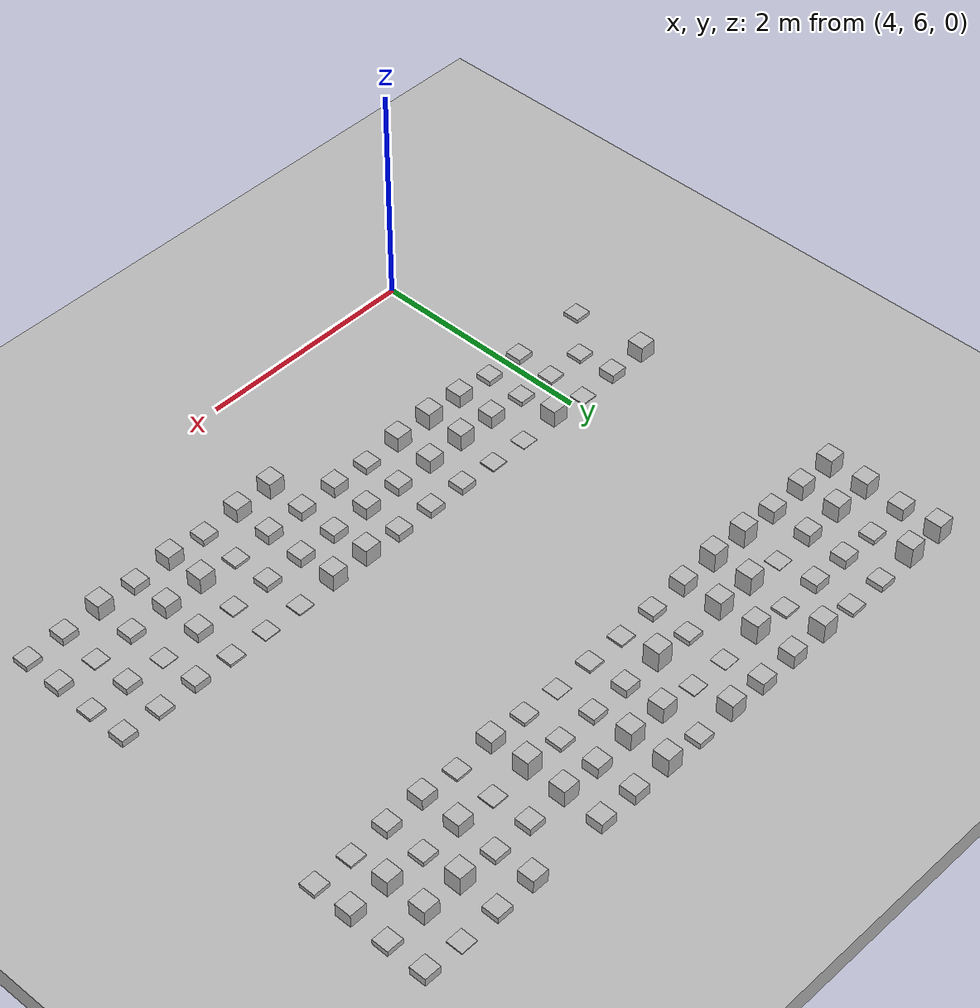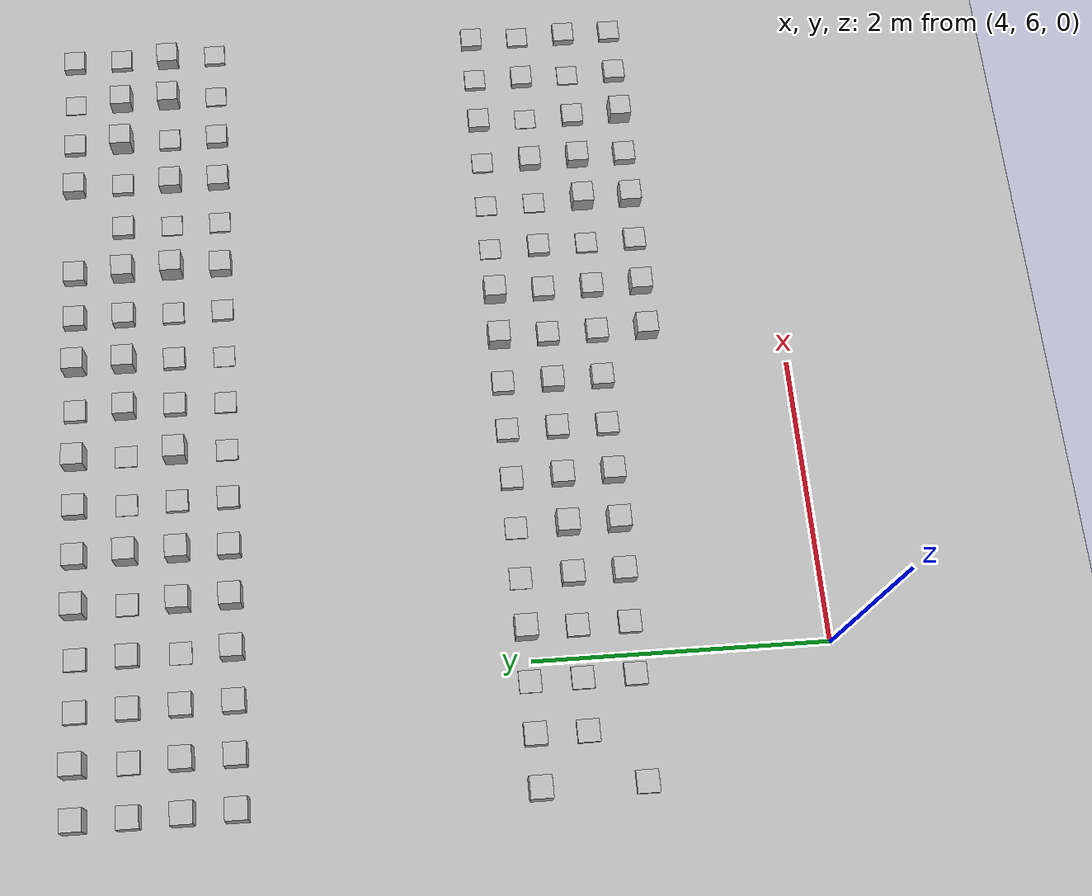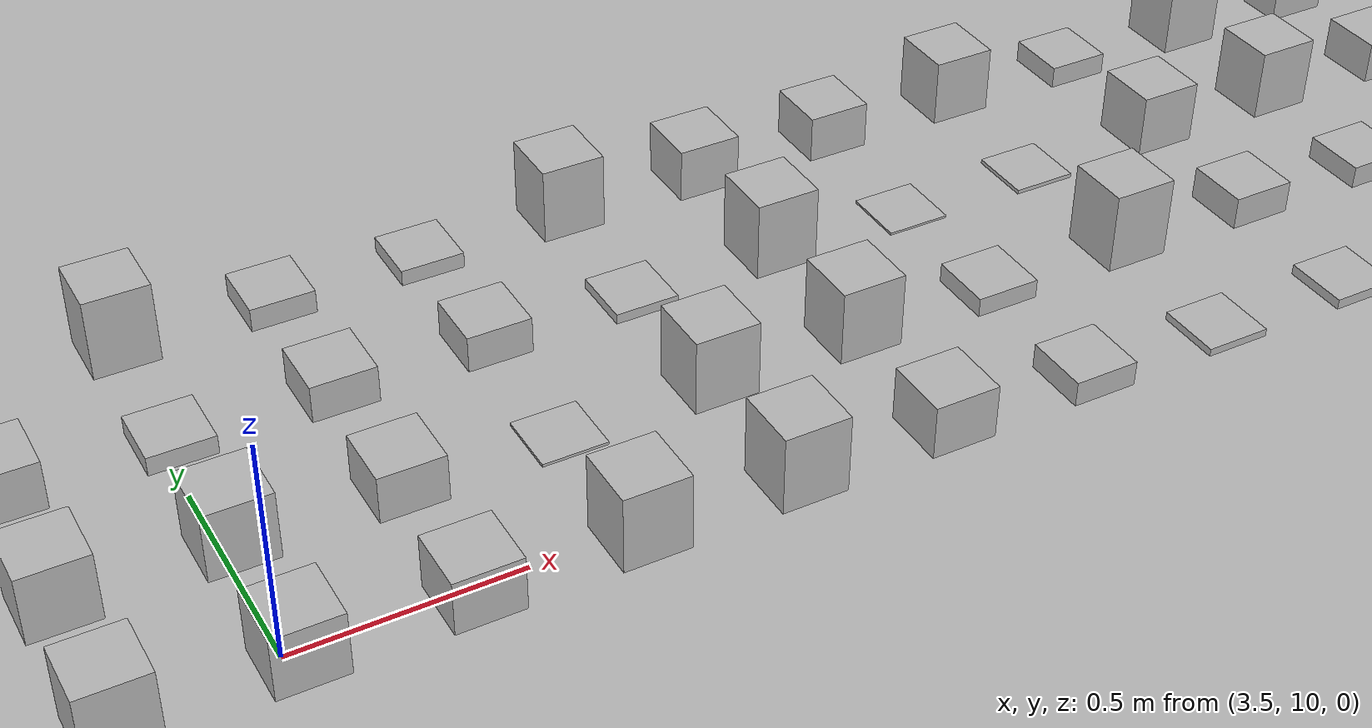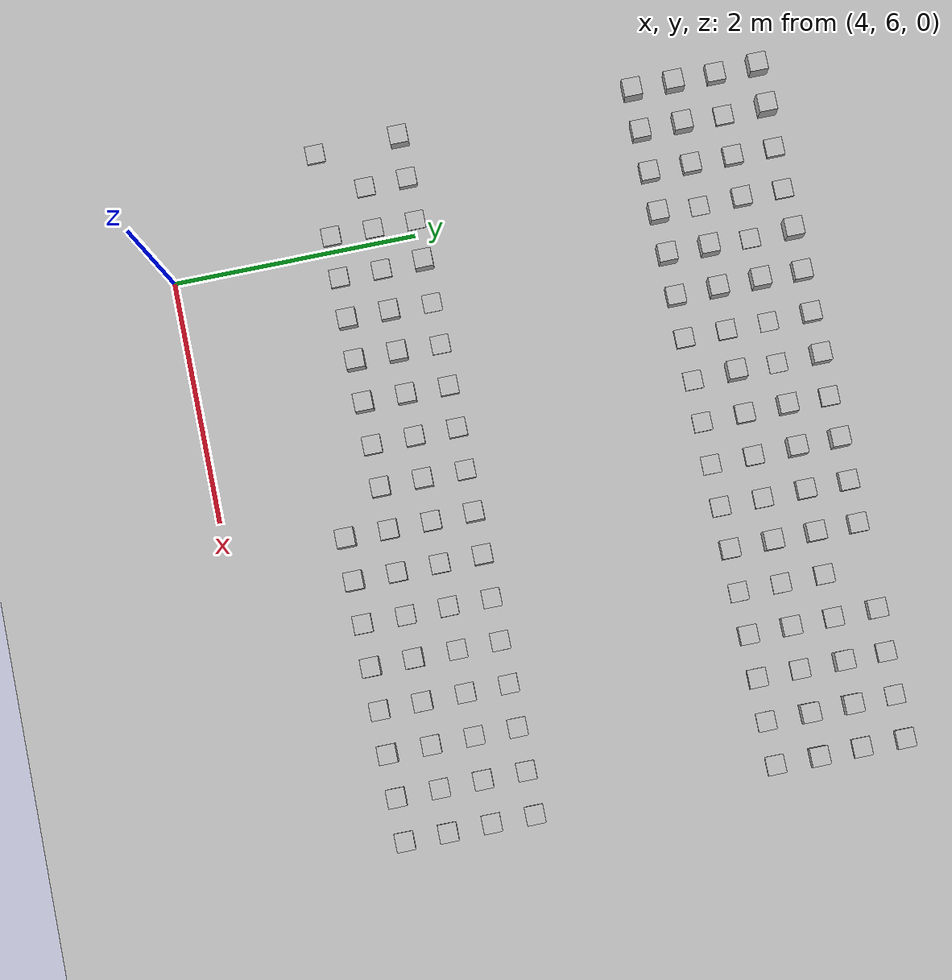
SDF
<sdf version="1.6">
 <world name="ugv_rough">
  <model name="ground">
   <static>true</static>
   <link name="l">
    <collision name="c"><geometry><box><size>60 60 0.2</size></box></geometry></collision>
    <visual name="v"><geometry><box><size>60 60 0.2</size></box></geometry></visual>
    <pose>0 0 -0.1 0 0 0</pose>
   </link>
  </model>
  <model name="r6_1">
   <static>true</static>
   <pose>3.175 7.325 0.0183 0 0 0</pose>
   <link name="l">
    <collision name="c"><geometry><box><size>0.15 0.15 0.036582575373329186</size></box></geometry></collision>
    <visual name="v"><geometry><box><size>0.15 0.15 0.036582575373329186</size></box></geometry></visual>
   </link>
  </model>
  <model name="r6_3">
   <static>true</static>
   <pose>3.175 8.025 0.0745 0 0 0</pose>
   <link name="l">
    <collision name="c"><geometry><box><size>0.15 0.15 0.1489323241444018</size></box></geometry></collision>
    <visual name="v"><geometry><box><size>0.15 0.15 0.1489323241444018</size></box></geometry></visual>
   </link>
  </model>
  <model name="r6_6">
   <static>true</static>
   <pose>3.525 7.675 0.0168 0 0 0</pose>
   <link name="l">
    <collision name="c"><geometry><box><size>0.15 0.15 0.033554731487051605</size></box></geometry></collision>
    <visual name="v"><geometry><box><size>0.15 0.15 0.033554731487051605</size></box></geometry></visual>
   </link>
  </model>
  <model name="r6_7">
   <static>true</static>
   <pose>3.525 8.025 0.0414 0 0 0</pose>
   <link name="l">
    <collision name="c"><geometry><box><size>0.15 0.15 0.08287363635761626</size></box></geometry></collision>
    <visual name="v"><geometry><box><size>0.15 0.15 0.08287363635761626</size></box></geometry></visual>
   </link>
  </model>
  <model name="r6_9">
   <static>true</static>
   <pose>3.875 7.325 0.0247 0 0 0</pose>
   <link name="l">
    <collision name="c"><geometry><box><size>0.15 0.15 0.04943548635803554</size></box></geometry></collision>
    <visual name="v"><geometry><box><size>0.15 0.15 0.04943548635803554</size></box></geometry></visual>
   </link>
  </model>
  <model name="r6_10">
   <static>true</static>
   <pose>3.875 7.675 0.0121 0 0 0</pose>
   <link name="l">
    <collision name="c"><geometry><box><size>0.15 0.15 0.024180995924502062</size></box></geometry></collision>
    <visual name="v"><geometry><box><size>0.15 0.15 0.024180995924502062</size></box></geometry></visual>
   </link>
  </model>
  <model name="r6_11">
   <static>true</static>
   <pose>3.875 8.025 0.0056 0 0 0</pose>
   <link name="l">
    <collision name="c"><geometry><box><size>0.15 0.15 0.011273235566419989</size></box></geometry></collision>
    <visual name="v"><geometry><box><size>0.15 0.15 0.011273235566419989</size></box></geometry></visual>
   </link>
  </model>
  <model name="r6_13">
   <static>true</static>
   <pose>4.225 7.325 0.0246 0 0 0</pose>
   <link name="l">
    <collision name="c"><geometry><box><size>0.15 0.15 0.04919970274255292</size></box></geometry></collision>
    <visual name="v"><geometry><box><size>0.15 0.15 0.04919970274255292</size></box></geometry></visual>
   </link>
  </model>
  <model name="r6_14">
   <static>true</static>
   <pose>4.225 7.675 0.0218 0 0 0</pose>
   <link name="l">
    <collision name="c"><geometry><box><size>0.15 0.15 0.04365756159960608</size></box></geometry></collision>
    <visual name="v"><geometry><box><size>0.15 0.15 0.04365756159960608</size></box></geometry></visual>
   </link>
  </model>
  <model name="r6_15">
   <static>true</static>
   <pose>4.225 8.025 0.0787 0 0 0</pose>
   <link name="l">
    <collision name="c"><geometry><box><size>0.15 0.15 0.15741543805438185</size></box></geometry></collision>
    <visual name="v"><geometry><box><size>0.15 0.15 0.15741543805438185</size></box></geometry></visual>
   </link>
  </model>
  <model name="r6_17">
   <static>true</static>
   <pose>4.575 7.325 0.0615 0 0 0</pose>
   <link name="l">
    <collision name="c"><geometry><box><size>0.15 0.15 0.12305251808357544</size></box></geometry></collision>
    <visual name="v"><geometry><box><size>0.15 0.15 0.12305251808357544</size></box></geometry></visual>
   </link>
  </model>
  <model name="r6_18">
   <static>true</static>
   <pose>4.575 7.675 0.0588 0 0 0</pose>
   <link name="l">
    <collision name="c"><geometry><box><size>0.15 0.15 0.11756442428719359</size></box></geometry></collision>
    <visual name="v"><geometry><box><size>0.15 0.15 0.11756442428719359</size></box></geometry></visual>
   </link>
  </model>
  <model name="r6_19">
   <static>true</static>
   <pose>4.575 8.025 0.0032 0 0 0</pose>
   <link name="l">
    <collision name="c"><geometry><box><size>0.15 0.15 0.006417604996857111</size></box></geometry></collision>
    <visual name="v"><geometry><box><size>0.15 0.15 0.006417604996857111</size></box></geometry></visual>
   </link>
  </model>
  <model name="r6_21">
   <static>true</static>
   <pose>4.925 7.325 0.0791 0 0 0</pose>
   <link name="l">
    <collision name="c"><geometry><box><size>0.15 0.15 0.15822520963663564</size></box></geometry></collision>
    <visual name="v"><geometry><box><size>0.15 0.15 0.15822520963663564</size></box></geometry></visual>
   </link>
  </model>
  <model name="r6_22">
   <static>true</static>
   <pose>4.925 7.675 0.0789 0 0 0</pose>
   <link name="l">
    <collision name="c"><geometry><box><size>0.15 0.15 0.15788848622402132</size></box></geometry></collision>
    <visual name="v"><geometry><box><size>0.15 0.15 0.15788848622402132</size></box></geometry></visual>
   </link>
  </model>
  <model name="r6_23">
   <static>true</static>
   <pose>4.925 8.025 0.0073 0 0 0</pose>
   <link name="l">
    <collision name="c"><geometry><box><size>0.15 0.15 0.014650061242006452</size></box></geometry></collision>
    <visual name="v"><geometry><box><size>0.15 0.15 0.014650061242006452</size></box></geometry></visual>
   </link>
  </model>
  <model name="r6_25">
   <static>true</static>
   <pose>5.275 7.325 0.0722 0 0 0</pose>
   <link name="l">
    <collision name="c"><geometry><box><size>0.15 0.15 0.14442862392424308</size></box></geometry></collision>
    <visual name="v"><geometry><box><size>0.15 0.15 0.14442862392424308</size></box></geometry></visual>
   </link>
  </model>
  <model name="r6_26">
   <static>true</static>
   <pose>5.275 7.675 0.0639 0 0 0</pose>
   <link name="l">
    <collision name="c"><geometry><box><size>0.15 0.15 0.12776652032146907</size></box></geometry></collision>
    <visual name="v"><geometry><box><size>0.15 0.15 0.12776652032146907</size></box></geometry></visual>
   </link>
  </model>
  <model name="r6_27">
   <static>true</static>
   <pose>5.275 8.025 0.0302 0 0 0</pose>
   <link name="l">
    <collision name="c"><geometry><box><size>0.15 0.15 0.06042051015993732</size></box></geometry></collision>
    <visual name="v"><geometry><box><size>0.15 0.15 0.06042051015993732</size></box></geometry></visual>
   </link>
  </model>
  <model name="r6_29">
   <static>true</static>
   <pose>5.625 7.325 0.0323 0 0 0</pose>
   <link name="l">
    <collision name="c"><geometry><box><size>0.15 0.15 0.0645521498995681</size></box></geometry></collision>
    <visual name="v"><geometry><box><size>0.15 0.15 0.0645521498995681</size></box></geometry></visual>
   </link>
  </model>
  <model name="r6_30">
   <static>true</static>
   <pose>5.625 7.675 0.0420 0 0 0</pose>
   <link name="l">
    <collision name="c"><geometry><box><size>0.15 0.15 0.08398417565390405</size></box></geometry></collision>
    <visual name="v"><geometry><box><size>0.15 0.15 0.08398417565390405</size></box></geometry></visual>
   </link>
  </model>
  <model name="r6_31">
   <static>true</static>
   <pose>5.625 8.025 0.0329 0 0 0</pose>
   <link name="l">
    <collision name="c"><geometry><box><size>0.15 0.15 0.06571212635336092</size></box></geometry></collision>
    <visual name="v"><geometry><box><size>0.15 0.15 0.06571212635336092</size></box></geometry></visual>
   </link>
  </model>
  <model name="r6_33">
   <static>true</static>
   <pose>5.975 7.325 0.0516 0 0 0</pose>
   <link name="l">
    <collision name="c"><geometry><box><size>0.15 0.15 0.10317851207896736</size></box></geometry></collision>
    <visual name="v"><geometry><box><size>0.15 0.15 0.10317851207896736</size></box></geometry></visual>
   </link>
  </model>
  <model name="r6_34">
   <static>true</static>
   <pose>5.975 7.675 0.0575 0 0 0</pose>
   <link name="l">
    <collision name="c"><geometry><box><size>0.15 0.15 0.1149927123690234</size></box></geometry></collision>
    <visual name="v"><geometry><box><size>0.15 0.15 0.1149927123690234</size></box></geometry></visual>
   </link>
  </model>
  <model name="r6_35">
   <static>true</static>
   <pose>5.975 8.025 0.0369 0 0 0</pose>
   <link name="l">
    <collision name="c"><geometry><box><size>0.15 0.15 0.07370844836818682</size></box></geometry></collision>
    <visual name="v"><geometry><box><size>0.15 0.15 0.07370844836818682</size></box></geometry></visual>
   </link>
  </model>
  <model name="r6_36">
   <static>true</static>
   <pose>6.325 6.975 0.0758 0 0 0</pose>
   <link name="l">
    <collision name="c"><geometry><box><size>0.15 0.15 0.15155891925750767</size></box></geometry></collision>
    <visual name="v"><geometry><box><size>0.15 0.15 0.15155891925750767</size></box></geometry></visual>
   </link>
  </model>
  <model name="r6_37">
   <static>true</static>
   <pose>6.325 7.325 0.0438 0 0 0</pose>
   <link name="l">
    <collision name="c"><geometry><box><size>0.15 0.15 0.08769562673116052</size></box></geometry></collision>
    <visual name="v"><geometry><box><size>0.15 0.15 0.08769562673116052</size></box></geometry></visual>
   </link>
  </model>
  <model name="r6_38">
   <static>true</static>
   <pose>6.325 7.675 0.0417 0 0 0</pose>
   <link name="l">
    <collision name="c"><geometry><box><size>0.15 0.15 0.0833989994845685</size></box></geometry></collision>
    <visual name="v"><geometry><box><size>0.15 0.15 0.0833989994845685</size></box></geometry></visual>
   </link>
  </model>
  <model name="r6_39">
   <static>true</static>
   <pose>6.325 8.025 0.0798 0 0 0</pose>
   <link name="l">
    <collision name="c"><geometry><box><size>0.15 0.15 0.15959633242867705</size></box></geometry></collision>
    <visual name="v"><geometry><box><size>0.15 0.15 0.15959633242867705</size></box></geometry></visual>
   </link>
  </model>
  <model name="r6_40">
   <static>true</static>
   <pose>6.675 6.975 0.0668 0 0 0</pose>
   <link name="l">
    <collision name="c"><geometry><box><size>0.15 0.15 0.1335557844531876</size></box></geometry></collision>
    <visual name="v"><geometry><box><size>0.15 0.15 0.1335557844531876</size></box></geometry></visual>
   </link>
  </model>
  <model name="r6_41">
   <static>true</static>
   <pose>6.675 7.325 0.0474 0 0 0</pose>
   <link name="l">
    <collision name="c"><geometry><box><size>0.15 0.15 0.09472536333204193</size></box></geometry></collision>
    <visual name="v"><geometry><box><size>0.15 0.15 0.09472536333204193</size></box></geometry></visual>
   </link>
  </model>
  <model name="r6_42">
   <static>true</static>
   <pose>6.675 7.675 0.0422 0 0 0</pose>
   <link name="l">
    <collision name="c"><geometry><box><size>0.15 0.15 0.08449920761829442</size></box></geometry></collision>
    <visual name="v"><geometry><box><size>0.15 0.15 0.08449920761829442</size></box></geometry></visual>
   </link>
  </model>
  <model name="r6_43">
   <static>true</static>
   <pose>6.675 8.025 0.0796 0 0 0</pose>
   <link name="l">
    <collision name="c"><geometry><box><size>0.15 0.15 0.15915432668937443</size></box></geometry></collision>
    <visual name="v"><geometry><box><size>0.15 0.15 0.15915432668937443</size></box></geometry></visual>
   </link>
  </model>
  <model name="r6_44">
   <static>true</static>
   <pose>7.025 6.975 0.0305 0 0 0</pose>
   <link name="l">
    <collision name="c"><geometry><box><size>0.15 0.15 0.06091698909154408</size></box></geometry></collision>
    <visual name="v"><geometry><box><size>0.15 0.15 0.06091698909154408</size></box></geometry></visual>
   </link>
  </model>
  <model name="r6_45">
   <static>true</static>
   <pose>7.025 7.325 0.0132 0 0 0</pose>
   <link name="l">
    <collision name="c"><geometry><box><size>0.15 0.15 0.026439349805512328</size></box></geometry></collision>
    <visual name="v"><geometry><box><size>0.15 0.15 0.026439349805512328</size></box></geometry></visual>
   </link>
  </model>
  <model name="r6_46">
   <static>true</static>
   <pose>7.025 7.675 0.0288 0 0 0</pose>
   <link name="l">
    <collision name="c"><geometry><box><size>0.15 0.15 0.05764403580528896</size></box></geometry></collision>
    <visual name="v"><geometry><box><size>0.15 0.15 0.05764403580528896</size></box></geometry></visual>
   </link>
  </model>
  <model name="r6_47">
   <static>true</static>
   <pose>7.025 8.025 0.0065 0 0 0</pose>
   <link name="l">
    <collision name="c"><geometry><box><size>0.15 0.15 0.012937548991399428</size></box></geometry></collision>
    <visual name="v"><geometry><box><size>0.15 0.15 0.012937548991399428</size></box></geometry></visual>
   </link>
  </model>
  <model name="r6_48">
   <static>true</static>
   <pose>7.375 6.975 0.0672 0 0 0</pose>
   <link name="l">
    <collision name="c"><geometry><box><size>0.15 0.15 0.13432328323698423</size></box></geometry></collision>
    <visual name="v"><geometry><box><size>0.15 0.15 0.13432328323698423</size></box></geometry></visual>
   </link>
  </model>
  <model name="r6_49">
   <static>true</static>
   <pose>7.375 7.325 0.0769 0 0 0</pose>
   <link name="l">
    <collision name="c"><geometry><box><size>0.15 0.15 0.15382511855024036</size></box></geometry></collision>
    <visual name="v"><geometry><box><size>0.15 0.15 0.15382511855024036</size></box></geometry></visual>
   </link>
  </model>
  <model name="r6_50">
   <static>true</static>
   <pose>7.375 7.675 0.0069 0 0 0</pose>
   <link name="l">
    <collision name="c"><geometry><box><size>0.15 0.15 0.013721825484020123</size></box></geometry></collision>
    <visual name="v"><geometry><box><size>0.15 0.15 0.013721825484020123</size></box></geometry></visual>
   </link>
  </model>
  <model name="r6_51">
   <static>true</static>
   <pose>7.375 8.025 0.0050 0 0 0</pose>
   <link name="l">
    <collision name="c"><geometry><box><size>0.15 0.15 0.009968326698281854</size></box></geometry></collision>
    <visual name="v"><geometry><box><size>0.15 0.15 0.009968326698281854</size></box></geometry></visual>
   </link>
  </model>
  <model name="r6_52">
   <static>true</static>
   <pose>7.725 6.975 0.0386 0 0 0</pose>
   <link name="l">
    <collision name="c"><geometry><box><size>0.15 0.15 0.07729568353724363</size></box></geometry></collision>
    <visual name="v"><geometry><box><size>0.15 0.15 0.07729568353724363</size></box></geometry></visual>
   </link>
  </model>
  <model name="r6_53">
   <static>true</static>
   <pose>7.725 7.325 0.0602 0 0 0</pose>
   <link name="l">
    <collision name="c"><geometry><box><size>0.15 0.15 0.12043217818082635</size></box></geometry></collision>
    <visual name="v"><geometry><box><size>0.15 0.15 0.12043217818082635</size></box></geometry></visual>
   </link>
  </model>
  <model name="r6_54">
   <static>true</static>
   <pose>7.725 7.675 0.0452 0 0 0</pose>
   <link name="l">
    <collision name="c"><geometry><box><size>0.15 0.15 0.09045237584979834</size></box></geometry></collision>
    <visual name="v"><geometry><box><size>0.15 0.15 0.09045237584979834</size></box></geometry></visual>
   </link>
  </model>
  <model name="r6_55">
   <static>true</static>
   <pose>7.725 8.025 0.0114 0 0 0</pose>
   <link name="l">
    <collision name="c"><geometry><box><size>0.15 0.15 0.022893289615928333</size></box></geometry></collision>
    <visual name="v"><geometry><box><size>0.15 0.15 0.022893289615928333</size></box></geometry></visual>
   </link>
  </model>
  <model name="r6_56">
   <static>true</static>
   <pose>8.075 6.975 0.0722 0 0 0</pose>
   <link name="l">
    <collision name="c"><geometry><box><size>0.15 0.15 0.14443908576279912</size></box></geometry></collision>
    <visual name="v"><geometry><box><size>0.15 0.15 0.14443908576279912</size></box></geometry></visual>
   </link>
  </model>
  <model name="r6_57">
   <static>true</static>
   <pose>8.075 7.325 0.0313 0 0 0</pose>
   <link name="l">
    <collision name="c"><geometry><box><size>0.15 0.15 0.06268139848659487</size></box></geometry></collision>
    <visual name="v"><geometry><box><size>0.15 0.15 0.06268139848659487</size></box></geometry></visual>
   </link>
  </model>
  <model name="r6_58">
   <static>true</static>
   <pose>8.075 7.675 0.0036 0 0 0</pose>
   <link name="l">
    <collision name="c"><geometry><box><size>0.15 0.15 0.007153424605284826</size></box></geometry></collision>
    <visual name="v"><geometry><box><size>0.15 0.15 0.007153424605284826</size></box></geometry></visual>
   </link>
  </model>
  <model name="r6_59">
   <static>true</static>
   <pose>8.075 8.025 0.0366 0 0 0</pose>
   <link name="l">
    <collision name="c"><geometry><box><size>0.15 0.15 0.07320526706605293</size></box></geometry></collision>
    <visual name="v"><geometry><box><size>0.15 0.15 0.07320526706605293</size></box></geometry></visual>
   </link>
  </model>
  <model name="r6_60">
   <static>true</static>
   <pose>8.425 6.975 0.0355 0 0 0</pose>
   <link name="l">
    <collision name="c"><geometry><box><size>0.15 0.15 0.07106898285649017</size></box></geometry></collision>
    <visual name="v"><geometry><box><size>0.15 0.15 0.07106898285649017</size></box></geometry></visual>
   </link>
  </model>
  <model name="r6_61">
   <static>true</static>
   <pose>8.425 7.325 0.0063 0 0 0</pose>
   <link name="l">
    <collision name="c"><geometry><box><size>0.15 0.15 0.012668110509275313</size></box></geometry></collision>
    <visual name="v"><geometry><box><size>0.15 0.15 0.012668110509275313</size></box></geometry></visual>
   </link>
  </model>
  <model name="r6_62">
   <static>true</static>
   <pose>8.425 7.675 0.0302 0 0 0</pose>
   <link name="l">
    <collision name="c"><geometry><box><size>0.15 0.15 0.06043278461710663</size></box></geometry></collision>
    <visual name="v"><geometry><box><size>0.15 0.15 0.06043278461710663</size></box></geometry></visual>
   </link>
  </model>
  <model name="r6_63">
   <static>true</static>
   <pose>8.425 8.025 0.0199 0 0 0</pose>
   <link name="l">
    <collision name="c"><geometry><box><size>0.15 0.15 0.03979544263130137</size></box></geometry></collision>
    <visual name="v"><geometry><box><size>0.15 0.15 0.03979544263130137</size></box></geometry></visual>
   </link>
  </model>
  <model name="r6_64">
   <static>true</static>
   <pose>8.775 6.975 0.0251 0 0 0</pose>
   <link name="l">
    <collision name="c"><geometry><box><size>0.15 0.15 0.050263127071584056</size></box></geometry></collision>
    <visual name="v"><geometry><box><size>0.15 0.15 0.050263127071584056</size></box></geometry></visual>
   </link>
  </model>
  <model name="r6_65">
   <static>true</static>
   <pose>8.775 7.325 0.0326 0 0 0</pose>
   <link name="l">
    <collision name="c"><geometry><box><size>0.15 0.15 0.06520010765327416</size></box></geometry></collision>
    <visual name="v"><geometry><box><size>0.15 0.15 0.06520010765327416</size></box></geometry></visual>
   </link>
  </model>
  <model name="r6_66">
   <static>true</static>
   <pose>8.775 7.675 0.0138 0 0 0</pose>
   <link name="l">
    <collision name="c"><geometry><box><size>0.15 0.15 0.027550975085954138</size></box></geometry></collision>
    <visual name="v"><geometry><box><size>0.15 0.15 0.027550975085954138</size></box></geometry></visual>
   </link>
  </model>
  <model name="r6_67">
   <static>true</static>
   <pose>8.775 8.025 0.0311 0 0 0</pose>
   <link name="l">
    <collision name="c"><geometry><box><size>0.15 0.15 0.06211315567613422</size></box></geometry></collision>
    <visual name="v"><geometry><box><size>0.15 0.15 0.06211315567613422</size></box></geometry></visual>
   </link>
  </model>
  <model name="r7_0">
   <static>true</static>
   <pose>3.175 9.975 0.0856 0 0 0</pose>
   <link name="l">
    <collision name="c"><geometry><box><size>0.15 0.15 0.17118787770304358</size></box></geometry></collision>
    <visual name="v"><geometry><box><size>0.15 0.15 0.17118787770304358</size></box></geometry></visual>
   </link>
  </model>
  <model name="r7_1">
   <static>true</static>
   <pose>3.175 10.325 0.0800 0 0 0</pose>
   <link name="l">
    <collision name="c"><geometry><box><size>0.15 0.15 0.16009678816617567</size></box></geometry></collision>
    <visual name="v"><geometry><box><size>0.15 0.15 0.16009678816617567</size></box></geometry></visual>
   </link>
  </model>
  <model name="r7_2">
   <static>true</static>
   <pose>3.175 10.675 0.0594 0 0 0</pose>
   <link name="l">
    <collision name="c"><geometry><box><size>0.15 0.15 0.11876866992419416</size></box></geometry></collision>
    <visual name="v"><geometry><box><size>0.15 0.15 0.11876866992419416</size></box></geometry></visual>
   </link>
  </model>
  <model name="r7_3">
   <static>true</static>
   <pose>3.175 11.025 0.0887 0 0 0</pose>
   <link name="l">
    <collision name="c"><geometry><box><size>0.15 0.15 0.17740186648263356</size></box></geometry></collision>
    <visual name="v"><geometry><box><size>0.15 0.15 0.17740186648263356</size></box></geometry></visual>
   </link>
  </model>
  <model name="r7_4">
   <static>true</static>
   <pose>3.525 9.975 0.0742 0 0 0</pose>
   <link name="l">
    <collision name="c"><geometry><box><size>0.15 0.15 0.1483116339413668</size></box></geometry></collision>
    <visual name="v"><geometry><box><size>0.15 0.15 0.1483116339413668</size></box></geometry></visual>
   </link>
  </model>
  <model name="r7_5">
   <static>true</static>
   <pose>3.525 10.325 0.0810 0 0 0</pose>
   <link name="l">
    <collision name="c"><geometry><box><size>0.15 0.15 0.16195340779026215</size></box></geometry></collision>
    <visual name="v"><geometry><box><size>0.15 0.15 0.16195340779026215</size></box></geometry></visual>
   </link>
  </model>
  <model name="r7_6">
   <static>true</static>
   <pose>3.525 10.675 0.0225 0 0 0</pose>
   <link name="l">
    <collision name="c"><geometry><box><size>0.15 0.15 0.04494648206338656</size></box></geometry></collision>
    <visual name="v"><geometry><box><size>0.15 0.15 0.04494648206338656</size></box></geometry></visual>
   </link>
  </model>
  <model name="r7_7">
   <static>true</static>
   <pose>3.525 11.025 0.0976 0 0 0</pose>
   <link name="l">
    <collision name="c"><geometry><box><size>0.15 0.15 0.19523637601267732</size></box></geometry></collision>
    <visual name="v"><geometry><box><size>0.15 0.15 0.19523637601267732</size></box></geometry></visual>
   </link>
  </model>
  <model name="r7_8">
   <static>true</static>
   <pose>3.875 9.975 0.0634 0 0 0</pose>
   <link name="l">
    <collision name="c"><geometry><box><size>0.15 0.15 0.12678077548193475</size></box></geometry></collision>
    <visual name="v"><geometry><box><size>0.15 0.15 0.12678077548193475</size></box></geometry></visual>
   </link>
  </model>
  <model name="r7_9">
   <static>true</static>
   <pose>3.875 10.325 0.0558 0 0 0</pose>
   <link name="l">
    <collision name="c"><geometry><box><size>0.15 0.15 0.11160571285105554</size></box></geometry></collision>
    <visual name="v"><geometry><box><size>0.15 0.15 0.11160571285105554</size></box></geometry></visual>
   </link>
  </model>
  <model name="r7_10">
   <static>true</static>
   <pose>3.875 10.675 0.0446 0 0 0</pose>
   <link name="l">
    <collision name="c"><geometry><box><size>0.15 0.15 0.08927053001313634</size></box></geometry></collision>
    <visual name="v"><geometry><box><size>0.15 0.15 0.08927053001313634</size></box></geometry></visual>
   </link>
  </model>
  <model name="r7_11">
   <static>true</static>
   <pose>3.875 11.025 0.0283 0 0 0</pose>
   <link name="l">
    <collision name="c"><geometry><box><size>0.15 0.15 0.05667292584765267</size></box></geometry></collision>
    <visual name="v"><geometry><box><size>0.15 0.15 0.05667292584765267</size></box></geometry></visual>
   </link>
  </model>
  <model name="r7_12">
   <static>true</static>
   <pose>4.225 9.975 0.0902 0 0 0</pose>
   <link name="l">
    <collision name="c"><geometry><box><size>0.15 0.15 0.1803976083127911</size></box></geometry></collision>
    <visual name="v"><geometry><box><size>0.15 0.15 0.1803976083127911</size></box></geometry></visual>
   </link>
  </model>
  <model name="r7_13">
   <static>true</static>
   <pose>4.225 10.325 0.0033 0 0 0</pose>
   <link name="l">
    <collision name="c"><geometry><box><size>0.15 0.15 0.006537014296844013</size></box></geometry></collision>
    <visual name="v"><geometry><box><size>0.15 0.15 0.006537014296844013</size></box></geometry></visual>
   </link>
  </model>
  <model name="r7_14">
   <static>true</static>
   <pose>4.225 10.675 0.0436 0 0 0</pose>
   <link name="l">
    <collision name="c"><geometry><box><size>0.15 0.15 0.0872565043441817</size></box></geometry></collision>
    <visual name="v"><geometry><box><size>0.15 0.15 0.0872565043441817</size></box></geometry></visual>
   </link>
  </model>
  <model name="r7_15">
   <static>true</static>
   <pose>4.225 11.025 0.0189 0 0 0</pose>
   <link name="l">
    <collision name="c"><geometry><box><size>0.15 0.15 0.03770308679538817</size></box></geometry></collision>
    <visual name="v"><geometry><box><size>0.15 0.15 0.03770308679538817</size></box></geometry></visual>
   </link>
  </model>
  <model name="r7_16">
   <static>true</static>
   <pose>4.575 9.975 0.0925 0 0 0</pose>
   <link name="l">
    <collision name="c"><geometry><box><size>0.15 0.15 0.18500180498858304</size></box></geometry></collision>
    <visual name="v"><geometry><box><size>0.15 0.15 0.18500180498858304</size></box></geometry></visual>
   </link>
  </model>
  <model name="r7_17">
   <static>true</static>
   <pose>4.575 10.325 0.0901 0 0 0</pose>
   <link name="l">
    <collision name="c"><geometry><box><size>0.15 0.15 0.18024699400497113</size></box></geometry></collision>
    <visual name="v"><geometry><box><size>0.15 0.15 0.18024699400497113</size></box></geometry></visual>
   </link>
  </model>
  <model name="r7_18">
   <static>true</static>
   <pose>4.575 10.675 0.0121 0 0 0</pose>
   <link name="l">
    <collision name="c"><geometry><box><size>0.15 0.15 0.024217120809408632</size></box></geometry></collision>
    <visual name="v"><geometry><box><size>0.15 0.15 0.024217120809408632</size></box></geometry></visual>
   </link>
  </model>
  <model name="r7_19">
   <static>true</static>
   <pose>4.575 11.025 0.0917 0 0 0</pose>
   <link name="l">
    <collision name="c"><geometry><box><size>0.15 0.15 0.18348031024442435</size></box></geometry></collision>
    <visual name="v"><geometry><box><size>0.15 0.15 0.18348031024442435</size></box></geometry></visual>
   </link>
  </model>
  <model name="r7_20">
   <static>true</static>
   <pose>4.925 9.975 0.0634 0 0 0</pose>
   <link name="l">
    <collision name="c"><geometry><box><size>0.15 0.15 0.1267207355171714</size></box></geometry></collision>
    <visual name="v"><geometry><box><size>0.15 0.15 0.1267207355171714</size></box></geometry></visual>
   </link>
  </model>
  <model name="r7_21">
   <static>true</static>
   <pose>4.925 10.325 0.0892 0 0 0</pose>
   <link name="l">
    <collision name="c"><geometry><box><size>0.15 0.15 0.17832830738379002</size></box></geometry></collision>
    <visual name="v"><geometry><box><size>0.15 0.15 0.17832830738379002</size></box></geometry></visual>
   </link>
  </model>
  <model name="r7_22">
   <static>true</static>
   <pose>4.925 10.675 0.0943 0 0 0</pose>
   <link name="l">
    <collision name="c"><geometry><box><size>0.15 0.15 0.1885507400181647</size></box></geometry></collision>
    <visual name="v"><geometry><box><size>0.15 0.15 0.1885507400181647</size></box></geometry></visual>
   </link>
  </model>
  <model name="r7_23">
   <static>true</static>
   <pose>4.925 11.025 0.0647 0 0 0</pose>
   <link name="l">
    <collision name="c"><geometry><box><size>0.15 0.15 0.12948539469536877</size></box></geometry></collision>
    <visual name="v"><geometry><box><size>0.15 0.15 0.12948539469536877</size></box></geometry></visual>
   </link>
  </model>
  <model name="r7_24">
   <static>true</static>
   <pose>5.275 9.975 0.0294 0 0 0</pose>
   <link name="l">
    <collision name="c"><geometry><box><size>0.15 0.15 0.05888034893546046</size></box></geometry></collision>
    <visual name="v"><geometry><box><size>0.15 0.15 0.05888034893546046</size></box></geometry></visual>
   </link>
  </model>
  <model name="r7_25">
   <static>true</static>
   <pose>5.275 10.325 0.0228 0 0 0</pose>
   <link name="l">
    <collision name="c"><geometry><box><size>0.15 0.15 0.0455697277692577</size></box></geometry></collision>
    <visual name="v"><geometry><box><size>0.15 0.15 0.0455697277692577</size></box></geometry></visual>
   </link>
  </model>
  <model name="r7_26">
   <static>true</static>
   <pose>5.275 10.675 0.0027 0 0 0</pose>
   <link name="l">
    <collision name="c"><geometry><box><size>0.15 0.15 0.005345386762641069</size></box></geometry></collision>
    <visual name="v"><geometry><box><size>0.15 0.15 0.005345386762641069</size></box></geometry></visual>
   </link>
  </model>
  <model name="r7_27">
   <static>true</static>
   <pose>5.275 11.025 0.0571 0 0 0</pose>
   <link name="l">
    <collision name="c"><geometry><box><size>0.15 0.15 0.11417448121844553</size></box></geometry></collision>
    <visual name="v"><geometry><box><size>0.15 0.15 0.11417448121844553</size></box></geometry></visual>
   </link>
  </model>
  <model name="r7_28">
   <static>true</static>
   <pose>5.625 9.975 0.0091 0 0 0</pose>
   <link name="l">
    <collision name="c"><geometry><box><size>0.15 0.15 0.018286793296117664</size></box></geometry></collision>
    <visual name="v"><geometry><box><size>0.15 0.15 0.018286793296117664</size></box></geometry></visual>
   </link>
  </model>
  <model name="r7_29">
   <static>true</static>
   <pose>5.625 10.325 0.0973 0 0 0</pose>
   <link name="l">
    <collision name="c"><geometry><box><size>0.15 0.15 0.19457616211674145</size></box></geometry></collision>
    <visual name="v"><geometry><box><size>0.15 0.15 0.19457616211674145</size></box></geometry></visual>
   </link>
  </model>
  <model name="r7_30">
   <static>true</static>
   <pose>5.625 10.675 0.0049 0 0 0</pose>
   <link name="l">
    <collision name="c"><geometry><box><size>0.15 0.15 0.009827714549223043</size></box></geometry></collision>
    <visual name="v"><geometry><box><size>0.15 0.15 0.009827714549223043</size></box></geometry></visual>
   </link>
  </model>
  <model name="r7_31">
   <static>true</static>
   <pose>5.625 11.025 0.0816 0 0 0</pose>
   <link name="l">
    <collision name="c"><geometry><box><size>0.15 0.15 0.16326109684033185</size></box></geometry></collision>
    <visual name="v"><geometry><box><size>0.15 0.15 0.16326109684033185</size></box></geometry></visual>
   </link>
  </model>
  <model name="r7_32">
   <static>true</static>
   <pose>5.975 9.975 0.0121 0 0 0</pose>
   <link name="l">
    <collision name="c"><geometry><box><size>0.15 0.15 0.02427228757201885</size></box></geometry></collision>
    <visual name="v"><geometry><box><size>0.15 0.15 0.02427228757201885</size></box></geometry></visual>
   </link>
  </model>
  <model name="r7_33">
   <static>true</static>
   <pose>5.975 10.325 0.0393 0 0 0</pose>
   <link name="l">
    <collision name="c"><geometry><box><size>0.15 0.15 0.07869549584950795</size></box></geometry></collision>
    <visual name="v"><geometry><box><size>0.15 0.15 0.07869549584950795</size></box></geometry></visual>
   </link>
  </model>
  <model name="r7_34">
   <static>true</static>
   <pose>5.975 10.675 0.0761 0 0 0</pose>
   <link name="l">
    <collision name="c"><geometry><box><size>0.15 0.15 0.15225127253389434</size></box></geometry></collision>
    <visual name="v"><geometry><box><size>0.15 0.15 0.15225127253389434</size></box></geometry></visual>
   </link>
  </model>
  <model name="r7_35">
   <static>true</static>
   <pose>5.975 11.025 0.0267 0 0 0</pose>
   <link name="l">
    <collision name="c"><geometry><box><size>0.15 0.15 0.05339364983588544</size></box></geometry></collision>
    <visual name="v"><geometry><box><size>0.15 0.15 0.05339364983588544</size></box></geometry></visual>
   </link>
  </model>
  <model name="r7_36">
   <static>true</static>
   <pose>6.325 9.975 0.0032 0 0 0</pose>
   <link name="l">
    <collision name="c"><geometry><box><size>0.15 0.15 0.0064658274894664695</size></box></geometry></collision>
    <visual name="v"><geometry><box><size>0.15 0.15 0.0064658274894664695</size></box></geometry></visual>
   </link>
  </model>
  <model name="r7_37">
   <static>true</static>
   <pose>6.325 10.325 0.0271 0 0 0</pose>
   <link name="l">
    <collision name="c"><geometry><box><size>0.15 0.15 0.054132094925531</size></box></geometry></collision>
    <visual name="v"><geometry><box><size>0.15 0.15 0.054132094925531</size></box></geometry></visual>
   </link>
  </model>
  <model name="r7_38">
   <static>true</static>
   <pose>6.325 10.675 0.0871 0 0 0</pose>
   <link name="l">
    <collision name="c"><geometry><box><size>0.15 0.15 0.17411183404068895</size></box></geometry></collision>
    <visual name="v"><geometry><box><size>0.15 0.15 0.17411183404068895</size></box></geometry></visual>
   </link>
  </model>
  <model name="r7_39">
   <static>true</static>
   <pose>6.325 11.025 0.0881 0 0 0</pose>
   <link name="l">
    <collision name="c"><geometry><box><size>0.15 0.15 0.17619694681851095</size></box></geometry></collision>
    <visual name="v"><geometry><box><size>0.15 0.15 0.17619694681851095</size></box></geometry></visual>
   </link>
  </model>
  <model name="r7_40">
   <static>true</static>
   <pose>6.675 9.975 0.0184 0 0 0</pose>
   <link name="l">
    <collision name="c"><geometry><box><size>0.15 0.15 0.036819438575956286</size></box></geometry></collision>
    <visual name="v"><geometry><box><size>0.15 0.15 0.036819438575956286</size></box></geometry></visual>
   </link>
  </model>
  <model name="r7_41">
   <static>true</static>
   <pose>6.675 10.325 0.0202 0 0 0</pose>
   <link name="l">
    <collision name="c"><geometry><box><size>0.15 0.15 0.04031255993151979</size></box></geometry></collision>
    <visual name="v"><geometry><box><size>0.15 0.15 0.04031255993151979</size></box></geometry></visual>
   </link>
  </model>
  <model name="r7_42">
   <static>true</static>
   <pose>6.675 10.675 0.0516 0 0 0</pose>
   <link name="l">
    <collision name="c"><geometry><box><size>0.15 0.15 0.10329831228852292</size></box></geometry></collision>
    <visual name="v"><geometry><box><size>0.15 0.15 0.10329831228852292</size></box></geometry></visual>
   </link>
  </model>
  <model name="r7_43">
   <static>true</static>
   <pose>6.675 11.025 0.0496 0 0 0</pose>
   <link name="l">
    <collision name="c"><geometry><box><size>0.15 0.15 0.09912095584731949</size></box></geometry></collision>
    <visual name="v"><geometry><box><size>0.15 0.15 0.09912095584731949</size></box></geometry></visual>
   </link>
  </model>
  <model name="r7_44">
   <static>true</static>
   <pose>7.025 9.975 0.0608 0 0 0</pose>
   <link name="l">
    <collision name="c"><geometry><box><size>0.15 0.15 0.12154594329702058</size></box></geometry></collision>
    <visual name="v"><geometry><box><size>0.15 0.15 0.12154594329702058</size></box></geometry></visual>
   </link>
  </model>
  <model name="r7_45">
   <static>true</static>
   <pose>7.025 10.325 0.0900 0 0 0</pose>
   <link name="l">
    <collision name="c"><geometry><box><size>0.15 0.15 0.18002361682822143</size></box></geometry></collision>
    <visual name="v"><geometry><box><size>0.15 0.15 0.18002361682822143</size></box></geometry></visual>
   </link>
  </model>
  <model name="r7_46">
   <static>true</static>
   <pose>7.025 10.675 0.0784 0 0 0</pose>
   <link name="l">
    <collision name="c"><geometry><box><size>0.15 0.15 0.156821483293574</size></box></geometry></collision>
    <visual name="v"><geometry><box><size>0.15 0.15 0.156821483293574</size></box></geometry></visual>
   </link>
  </model>
  <model name="r7_47">
   <static>true</static>
   <pose>7.025 11.025 0.0481 0 0 0</pose>
   <link name="l">
    <collision name="c"><geometry><box><size>0.15 0.15 0.09612371354804428</size></box></geometry></collision>
    <visual name="v"><geometry><box><size>0.15 0.15 0.09612371354804428</size></box></geometry></visual>
   </link>
  </model>
  <model name="r7_48">
   <static>true</static>
   <pose>7.375 9.975 0.0115 0 0 0</pose>
   <link name="l">
    <collision name="c"><geometry><box><size>0.15 0.15 0.02295531367810646</size></box></geometry></collision>
    <visual name="v"><geometry><box><size>0.15 0.15 0.02295531367810646</size></box></geometry></visual>
   </link>
  </model>
  <model name="r7_49">
   <static>true</static>
   <pose>7.375 10.325 0.0070 0 0 0</pose>
   <link name="l">
    <collision name="c"><geometry><box><size>0.15 0.15 0.014048919623633239</size></box></geometry></collision>
    <visual name="v"><geometry><box><size>0.15 0.15 0.014048919623633239</size></box></geometry></visual>
   </link>
  </model>
  <model name="r7_50">
   <static>true</static>
   <pose>7.375 10.675 0.0319 0 0 0</pose>
   <link name="l">
    <collision name="c"><geometry><box><size>0.15 0.15 0.06374902185035092</size></box></geometry></collision>
    <visual name="v"><geometry><box><size>0.15 0.15 0.06374902185035092</size></box></geometry></visual>
   </link>
  </model>
  <model name="r7_52">
   <static>true</static>
   <pose>7.725 9.975 0.0521 0 0 0</pose>
   <link name="l">
    <collision name="c"><geometry><box><size>0.15 0.15 0.10410888067510773</size></box></geometry></collision>
    <visual name="v"><geometry><box><size>0.15 0.15 0.10410888067510773</size></box></geometry></visual>
   </link>
  </model>
  <model name="r7_53">
   <static>true</static>
   <pose>7.725 10.325 0.0625 0 0 0</pose>
   <link name="l">
    <collision name="c"><geometry><box><size>0.15 0.15 0.12501936403824473</size></box></geometry></collision>
    <visual name="v"><geometry><box><size>0.15 0.15 0.12501936403824473</size></box></geometry></visual>
   </link>
  </model>
  <model name="r7_54">
   <static>true</static>
   <pose>7.725 10.675 0.0251 0 0 0</pose>
   <link name="l">
    <collision name="c"><geometry><box><size>0.15 0.15 0.05011113689096028</size></box></geometry></collision>
    <visual name="v"><geometry><box><size>0.15 0.15 0.05011113689096028</size></box></geometry></visual>
   </link>
  </model>
  <model name="r7_55">
   <static>true</static>
   <pose>7.725 11.025 0.0616 0 0 0</pose>
   <link name="l">
    <collision name="c"><geometry><box><size>0.15 0.15 0.1231844871208812</size></box></geometry></collision>
    <visual name="v"><geometry><box><size>0.15 0.15 0.1231844871208812</size></box></geometry></visual>
   </link>
  </model>
  <model name="r7_56">
   <static>true</static>
   <pose>8.075 9.975 0.0387 0 0 0</pose>
   <link name="l">
    <collision name="c"><geometry><box><size>0.15 0.15 0.07741814250484846</size></box></geometry></collision>
    <visual name="v"><geometry><box><size>0.15 0.15 0.07741814250484846</size></box></geometry></visual>
   </link>
  </model>
  <model name="r7_57">
   <static>true</static>
   <pose>8.075 10.325 0.0218 0 0 0</pose>
   <link name="l">
    <collision name="c"><geometry><box><size>0.15 0.15 0.04362957013514095</size></box></geometry></collision>
    <visual name="v"><geometry><box><size>0.15 0.15 0.04362957013514095</size></box></geometry></visual>
   </link>
  </model>
  <model name="r7_58">
   <static>true</static>
   <pose>8.075 10.675 0.0873 0 0 0</pose>
   <link name="l">
    <collision name="c"><geometry><box><size>0.15 0.15 0.1746992656023404</size></box></geometry></collision>
    <visual name="v"><geometry><box><size>0.15 0.15 0.1746992656023404</size></box></geometry></visual>
   </link>
  </model>
  <model name="r7_59">
   <static>true</static>
   <pose>8.075 11.025 0.0287 0 0 0</pose>
   <link name="l">
    <collision name="c"><geometry><box><size>0.15 0.15 0.057444160978074366</size></box></geometry></collision>
    <visual name="v"><geometry><box><size>0.15 0.15 0.057444160978074366</size></box></geometry></visual>
   </link>
  </model>
  <model name="r7_60">
   <static>true</static>
   <pose>8.425 9.975 0.0096 0 0 0</pose>
   <link name="l">
    <collision name="c"><geometry><box><size>0.15 0.15 0.01927871825750285</size></box></geometry></collision>
    <visual name="v"><geometry><box><size>0.15 0.15 0.01927871825750285</size></box></geometry></visual>
   </link>
  </model>
  <model name="r7_61">
   <static>true</static>
   <pose>8.425 10.325 0.0755 0 0 0</pose>
   <link name="l">
    <collision name="c"><geometry><box><size>0.15 0.15 0.15097717463838345</size></box></geometry></collision>
    <visual name="v"><geometry><box><size>0.15 0.15 0.15097717463838345</size></box></geometry></visual>
   </link>
  </model>
  <model name="r7_62">
   <static>true</static>
   <pose>8.425 10.675 0.0685 0 0 0</pose>
   <link name="l">
    <collision name="c"><geometry><box><size>0.15 0.15 0.13703454772100057</size></box></geometry></collision>
    <visual name="v"><geometry><box><size>0.15 0.15 0.13703454772100057</size></box></geometry></visual>
   </link>
  </model>
  <model name="r7_63">
   <static>true</static>
   <pose>8.425 11.025 0.0051 0 0 0</pose>
   <link name="l">
    <collision name="c"><geometry><box><size>0.15 0.15 0.010234815215169136</size></box></geometry></collision>
    <visual name="v"><geometry><box><size>0.15 0.15 0.010234815215169136</size></box></geometry></visual>
   </link>
  </model>
  <model name="r7_64">
   <static>true</static>
   <pose>8.775 9.975 0.0179 0 0 0</pose>
   <link name="l">
    <collision name="c"><geometry><box><size>0.15 0.15 0.03577403622772966</size></box></geometry></collision>
    <visual name="v"><geometry><box><size>0.15 0.15 0.03577403622772966</size></box></geometry></visual>
   </link>
  </model>
  <model name="r7_65">
   <static>true</static>
   <pose>8.775 10.325 0.0609 0 0 0</pose>
   <link name="l">
    <collision name="c"><geometry><box><size>0.15 0.15 0.12185031122352702</size></box></geometry></collision>
    <visual name="v"><geometry><box><size>0.15 0.15 0.12185031122352702</size></box></geometry></visual>
   </link>
  </model>
  <model name="r7_66">
   <static>true</static>
   <pose>8.775 10.675 0.0250 0 0 0</pose>
   <link name="l">
    <collision name="c"><geometry><box><size>0.15 0.15 0.04996830815030591</size></box></geometry></collision>
    <visual name="v"><geometry><box><size>0.15 0.15 0.04996830815030591</size></box></geometry></visual>
   </link>
  </model>
  <model name="r7_67">
   <static>true</static>
   <pose>8.775 11.025 0.0368 0 0 0</pose>
   <link name="l">
    <collision name="c"><geometry><box><size>0.15 0.15 0.07363494305552641</size></box></geometry></collision>
    <visual name="v"><geometry><box><size>0.15 0.15 0.07363494305552641</size></box></geometry></visual>
   </link>
  </model>
 </world>
</sdf>
